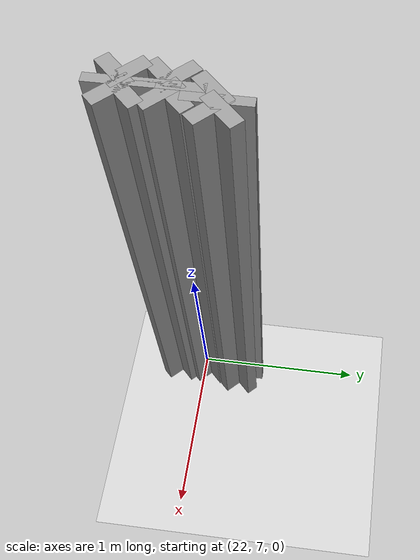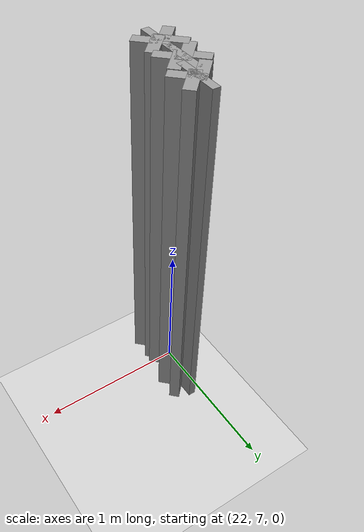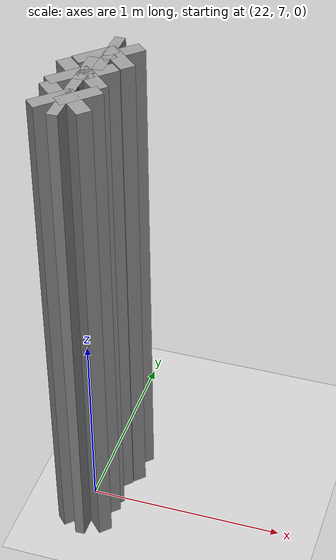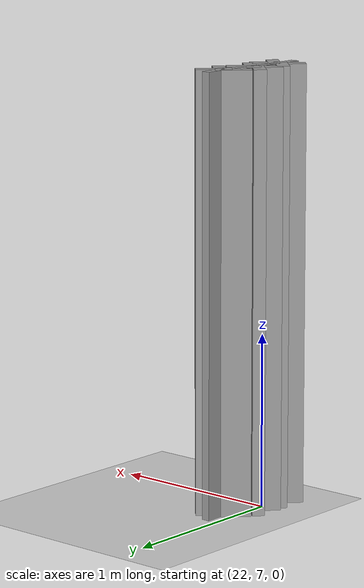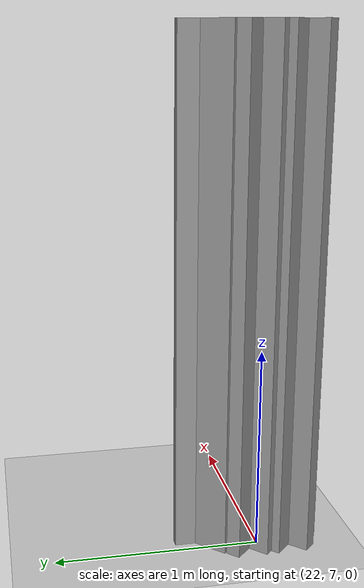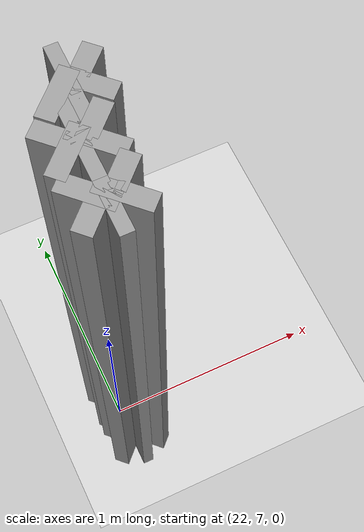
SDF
<sdf version="1.4">
 <world name="1_wall">
  <model name="ground_plane">
   <static>1</static>
   <link name="link">
    <collision name="collision">
     <geometry><plane><normal>0 0 1</normal><size>1000 1000</size></plane></geometry>
     <surface><friction><ode><mu>100</mu><mu2>50</mu2></ode></friction></surface>
    </collision>
    <visual name="visual">
     <cast_shadows>0</cast_shadows>
     <geometry><plane><normal>0 0 1</normal><size>10000 10000</size></plane></geometry>
     <material>
      <script><uri>file://media/materials/scripts/gazebo.material</uri><name>Gazebo/Grey</name></script>
     </material>
    </visual>
    <velocity_decay><linear>0</linear><angular>0</angular></velocity_decay>
   </link>
  </model>
  <model name="Wall_645">
   <static>1</static>
   <link name="Wall_645">
    <collision name="Wall_Collision_645">
     <geometry><box><size>0.07071067811865513 0.2 2.5</size></box></geometry>
     <pose>0 0 1.25 0 -0 0</pose>
    </collision>
    <visual name="Wall_Visual_645">
     <pose>0 0 1.25 0 -0 0</pose>
     <geometry><box><size>0.07071067811865513 0.2 2.5</size></box></geometry>
     <material>
      <script><uri>file://media/materials/scripts/gazebo.material</uri><name>Gazebo/Grey</name></script>
     </material>
    </visual>
    <velocity_decay><linear>0</linear><angular>0</angular></velocity_decay>
    <pose>22.025 7.225 0 0 0 -0.7853981633974394</pose>
   </link>
  </model>
  <model name="Wall_646">
   <static>1</static>
   <link name="Wall_646">
    <collision name="Wall_Collision_646">
     <geometry><box><size>0.05000000000000071 0.2 2.5</size></box></geometry>
     <pose>0 0 1.25 0 -0 0</pose>
    </collision>
    <visual name="Wall_Visual_646">
     <pose>0 0 1.25 0 -0 0</pose>
     <geometry><box><size>0.05000000000000071 0.2 2.5</size></box></geometry>
     <material>
      <script><uri>file://media/materials/scripts/gazebo.material</uri><name>Gazebo/Grey</name></script>
     </material>
    </visual>
    <velocity_decay><linear>0</linear><angular>0</angular></velocity_decay>
    <pose>22.075000000000003 7.2 0 0 0 0.0</pose>
   </link>
  </model>
  <model name="Wall_647">
   <static>1</static>
   <link name="Wall_647">
    <collision name="Wall_Collision_647">
     <geometry><box><size>0.07071067811865513 0.2 2.5</size></box></geometry>
     <pose>0 0 1.25 0 -0 0</pose>
    </collision>
    <visual name="Wall_Visual_647">
     <pose>0 0 1.25 0 -0 0</pose>
     <geometry><box><size>0.07071067811865513 0.2 2.5</size></box></geometry>
     <material>
      <script><uri>file://media/materials/scripts/gazebo.material</uri><name>Gazebo/Grey</name></script>
     </material>
    </visual>
    <velocity_decay><linear>0</linear><angular>0</angular></velocity_decay>
    <pose>22.125 7.225 0 0 0 0.7853981633974394</pose>
   </link>
  </model>
  <model name="Wall_648">
   <static>1</static>
   <link name="Wall_648">
    <collision name="Wall_Collision_648">
     <geometry><box><size>0.07071067811865576 0.2 2.5</size></box></geometry>
     <pose>0 0 1.25 0 -0 0</pose>
    </collision>
    <visual name="Wall_Visual_648">
     <pose>0 0 1.25 0 -0 0</pose>
     <geometry><box><size>0.07071067811865576 0.2 2.5</size></box></geometry>
     <material>
      <script><uri>file://media/materials/scripts/gazebo.material</uri><name>Gazebo/Grey</name></script>
     </material>
    </visual>
    <velocity_decay><linear>0</linear><angular>0</angular></velocity_decay>
    <pose>22.125 7.275 0 0 0 2.356194490192345</pose>
   </link>
  </model>
  <model name="Wall_649">
   <static>1</static>
   <link name="Wall_649">
    <collision name="Wall_Collision_649">
     <geometry><box><size>0.05000000000000071 0.2 2.5</size></box></geometry>
     <pose>0 0 1.25 0 -0 0</pose>
    </collision>
    <visual name="Wall_Visual_649">
     <pose>0 0 1.25 0 -0 0</pose>
     <geometry><box><size>0.05000000000000071 0.2 2.5</size></box></geometry>
     <material>
      <script><uri>file://media/materials/scripts/gazebo.material</uri><name>Gazebo/Grey</name></script>
     </material>
    </visual>
    <velocity_decay><linear>0</linear><angular>0</angular></velocity_decay>
    <pose>22.075000000000003 7.300000000000001 0 0 0 3.141592653589793</pose>
   </link>
  </model>
  <model name="Wall_650">
   <static>1</static>
   <link name="Wall_650">
    <collision name="Wall_Collision_650">
     <geometry><box><size>0.07071067811865261 0.2 2.5</size></box></geometry>
     <pose>0 0 1.25 0 -0 0</pose>
    </collision>
    <visual name="Wall_Visual_650">
     <pose>0 0 1.25 0 -0 0</pose>
     <geometry><box><size>0.07071067811865261 0.2 2.5</size></box></geometry>
     <material>
      <script><uri>file://media/materials/scripts/gazebo.material</uri><name>Gazebo/Grey</name></script>
     </material>
    </visual>
    <velocity_decay><linear>0</linear><angular>0</angular></velocity_decay>
    <pose>21.975 7.075000000000001 0 0 0 -2.356194490192318</pose>
   </link>
  </model>
  <model name="Wall_651">
   <static>1</static>
   <link name="Wall_651">
    <collision name="Wall_Collision_651">
     <geometry><box><size>0.07071067811865325 0.2 2.5</size></box></geometry>
     <pose>0 0 1.25 0 -0 0</pose>
    </collision>
    <visual name="Wall_Visual_651">
     <pose>0 0 1.25 0 -0 0</pose>
     <geometry><box><size>0.07071067811865325 0.2 2.5</size></box></geometry>
     <material>
      <script><uri>file://media/materials/scripts/gazebo.material</uri><name>Gazebo/Grey</name></script>
     </material>
    </visual>
    <velocity_decay><linear>0</linear><angular>0</angular></velocity_decay>
    <pose>21.975 7.025 0 0 0 -0.7853981633974838</pose>
   </link>
  </model>
  <model name="Wall_652">
   <static>1</static>
   <link name="Wall_652">
    <collision name="Wall_Collision_652">
     <geometry><box><size>0.05000000000000071 0.2 2.5</size></box></geometry>
     <pose>0 0 1.25 0 -0 0</pose>
    </collision>
    <visual name="Wall_Visual_652">
     <pose>0 0 1.25 0 -0 0</pose>
     <geometry><box><size>0.05000000000000071 0.2 2.5</size></box></geometry>
     <material>
      <script><uri>file://media/materials/scripts/gazebo.material</uri><name>Gazebo/Grey</name></script>
     </material>
    </visual>
    <velocity_decay><linear>0</linear><angular>0</angular></velocity_decay>
    <pose>22.025 7.0 0 0 0 0.0</pose>
   </link>
  </model>
  <model name="Wall_653">
   <static>1</static>
   <link name="Wall_653">
    <collision name="Wall_Collision_653">
     <geometry><box><size>0.07071067811865576 0.2 2.5</size></box></geometry>
     <pose>0 0 1.25 0 -0 0</pose>
    </collision>
    <visual name="Wall_Visual_653">
     <pose>0 0 1.25 0 -0 0</pose>
     <geometry><box><size>0.07071067811865576 0.2 2.5</size></box></geometry>
     <material>
      <script><uri>file://media/materials/scripts/gazebo.material</uri><name>Gazebo/Grey</name></script>
     </material>
    </visual>
    <velocity_decay><linear>0</linear><angular>0</angular></velocity_decay>
    <pose>22.075000000000003 7.025 0 0 0 0.7853981633974483</pose>
   </link>
  </model>
  <model name="Wall_654">
   <static>1</static>
   <link name="Wall_654">
    <collision name="Wall_Collision_654">
     <geometry><box><size>0.07071067811865513 0.2 2.5</size></box></geometry>
     <pose>0 0 1.25 0 -0 0</pose>
    </collision>
    <visual name="Wall_Visual_654">
     <pose>0 0 1.25 0 -0 0</pose>
     <geometry><box><size>0.07071067811865513 0.2 2.5</size></box></geometry>
     <material>
      <script><uri>file://media/materials/scripts/gazebo.material</uri><name>Gazebo/Grey</name></script>
     </material>
    </visual>
    <velocity_decay><linear>0</linear><angular>0</angular></velocity_decay>
    <pose>22.075000000000003 7.075000000000001 0 0 0 2.3561944901923537</pose>
   </link>
  </model>
  <model name="Wall_655">
   <static>1</static>
   <link name="Wall_655">
    <collision name="Wall_Collision_655">
     <geometry><box><size>0.05000000000000071 0.2 2.5</size></box></geometry>
     <pose>0 0 1.25 0 -0 0</pose>
    </collision>
    <visual name="Wall_Visual_655">
     <pose>0 0 1.25 0 -0 0</pose>
     <geometry><box><size>0.05000000000000071 0.2 2.5</size></box></geometry>
     <material>
      <script><uri>file://media/materials/scripts/gazebo.material</uri><name>Gazebo/Grey</name></script>
     </material>
    </visual>
    <velocity_decay><linear>0</linear><angular>0</angular></velocity_decay>
    <pose>22.025 7.1000000000000005 0 0 0 3.141592653589793</pose>
   </link>
  </model>
  <model name="Wall_656">
   <static>1</static>
   <link name="Wall_656">
    <collision name="Wall_Collision_656">
     <geometry><box><size>0.07071067811865261 0.2 2.5</size></box></geometry>
     <pose>0 0 1.25 0 -0 0</pose>
    </collision>
    <visual name="Wall_Visual_656">
     <pose>0 0 1.25 0 -0 0</pose>
     <geometry><box><size>0.07071067811865261 0.2 2.5</size></box></geometry>
     <material>
      <script><uri>file://media/materials/scripts/gazebo.material</uri><name>Gazebo/Grey</name></script>
     </material>
    </visual>
    <velocity_decay><linear>0</linear><angular>0</angular></velocity_decay>
    <pose>21.975 6.875 0 0 0 -2.356194490192318</pose>
   </link>
  </model>
  <model name="Wall_657">
   <static>1</static>
   <link name="Wall_657">
    <collision name="Wall_Collision_657">
     <geometry><box><size>0.07071067811865261 0.2 2.5</size></box></geometry>
     <pose>0 0 1.25 0 -0 0</pose>
    </collision>
    <visual name="Wall_Visual_657">
     <pose>0 0 1.25 0 -0 0</pose>
     <geometry><box><size>0.07071067811865261 0.2 2.5</size></box></geometry>
     <material>
      <script><uri>file://media/materials/scripts/gazebo.material</uri><name>Gazebo/Grey</name></script>
     </material>
    </visual>
    <velocity_decay><linear>0</linear><angular>0</angular></velocity_decay>
    <pose>21.975 6.825000000000001 0 0 0 -0.7853981633974749</pose>
   </link>
  </model>
  <model name="Wall_658">
   <static>1</static>
   <link name="Wall_658">
    <collision name="Wall_Collision_658">
     <geometry><box><size>0.05000000000000071 0.2 2.5</size></box></geometry>
     <pose>0 0 1.25 0 -0 0</pose>
    </collision>
    <visual name="Wall_Visual_658">
     <pose>0 0 1.25 0 -0 0</pose>
     <geometry><box><size>0.05000000000000071 0.2 2.5</size></box></geometry>
     <material>
      <script><uri>file://media/materials/scripts/gazebo.material</uri><name>Gazebo/Grey</name></script>
     </material>
    </visual>
    <velocity_decay><linear>0</linear><angular>0</angular></velocity_decay>
    <pose>22.025 6.800000000000001 0 0 0 0.0</pose>
   </link>
  </model>
  <model name="Wall_659">
   <static>1</static>
   <link name="Wall_659">
    <collision name="Wall_Collision_659">
     <geometry><box><size>0.07071067811865513 0.2 2.5</size></box></geometry>
     <pose>0 0 1.25 0 -0 0</pose>
    </collision>
    <visual name="Wall_Visual_659">
     <pose>0 0 1.25 0 -0 0</pose>
     <geometry><box><size>0.07071067811865513 0.2 2.5</size></box></geometry>
     <material>
      <script><uri>file://media/materials/scripts/gazebo.material</uri><name>Gazebo/Grey</name></script>
     </material>
    </visual>
    <velocity_decay><linear>0</linear><angular>0</angular></velocity_decay>
    <pose>22.075000000000003 6.825000000000001 0 0 0 0.7853981633974394</pose>
   </link>
  </model>
  <model name="Wall_660">
   <static>1</static>
   <link name="Wall_660">
    <collision name="Wall_Collision_660">
     <geometry><box><size>0.07071067811865513 0.2 2.5</size></box></geometry>
     <pose>0 0 1.25 0 -0 0</pose>
    </collision>
    <visual name="Wall_Visual_660">
     <pose>0 0 1.25 0 -0 0</pose>
     <geometry><box><size>0.07071067811865513 0.2 2.5</size></box></geometry>
     <material>
      <script><uri>file://media/materials/scripts/gazebo.material</uri><name>Gazebo/Grey</name></script>
     </material>
    </visual>
    <velocity_decay><linear>0</linear><angular>0</angular></velocity_decay>
    <pose>22.075000000000003 6.875 0 0 0 2.3561944901923537</pose>
   </link>
  </model>
  <model name="Wall_661">
   <static>1</static>
   <link name="Wall_661">
    <collision name="Wall_Collision_661">
     <geometry><box><size>0.05000000000000071 0.2 2.5</size></box></geometry>
     <pose>0 0 1.25 0 -0 0</pose>
    </collision>
    <visual name="Wall_Visual_661">
     <pose>0 0 1.25 0 -0 0</pose>
     <geometry><box><size>0.05000000000000071 0.2 2.5</size></box></geometry>
     <material>
      <script><uri>file://media/materials/scripts/gazebo.material</uri><name>Gazebo/Grey</name></script>
     </material>
    </visual>
    <velocity_decay><linear>0</linear><angular>0</angular></velocity_decay>
    <pose>22.025 6.9 0 0 0 3.141592653589793</pose>
   </link>
  </model>
 </world>
</sdf>
